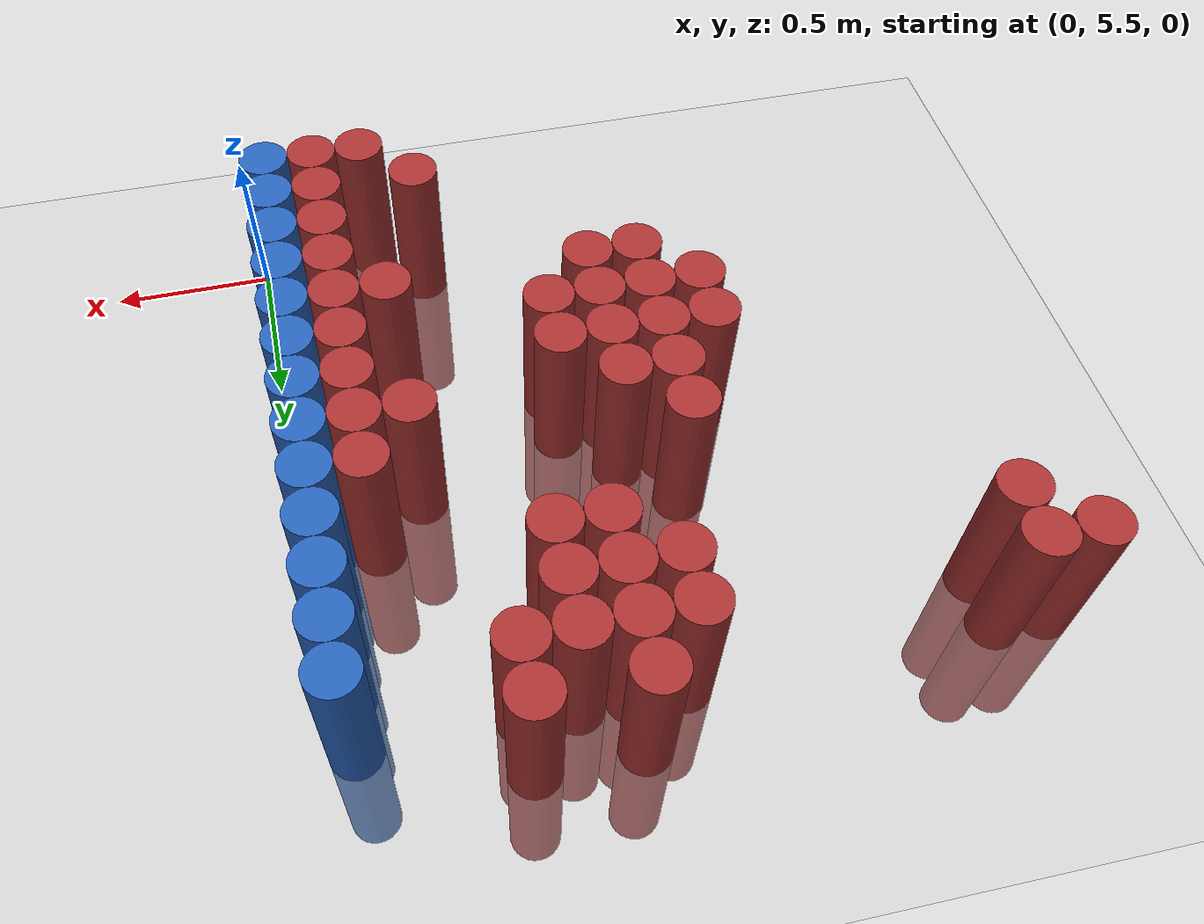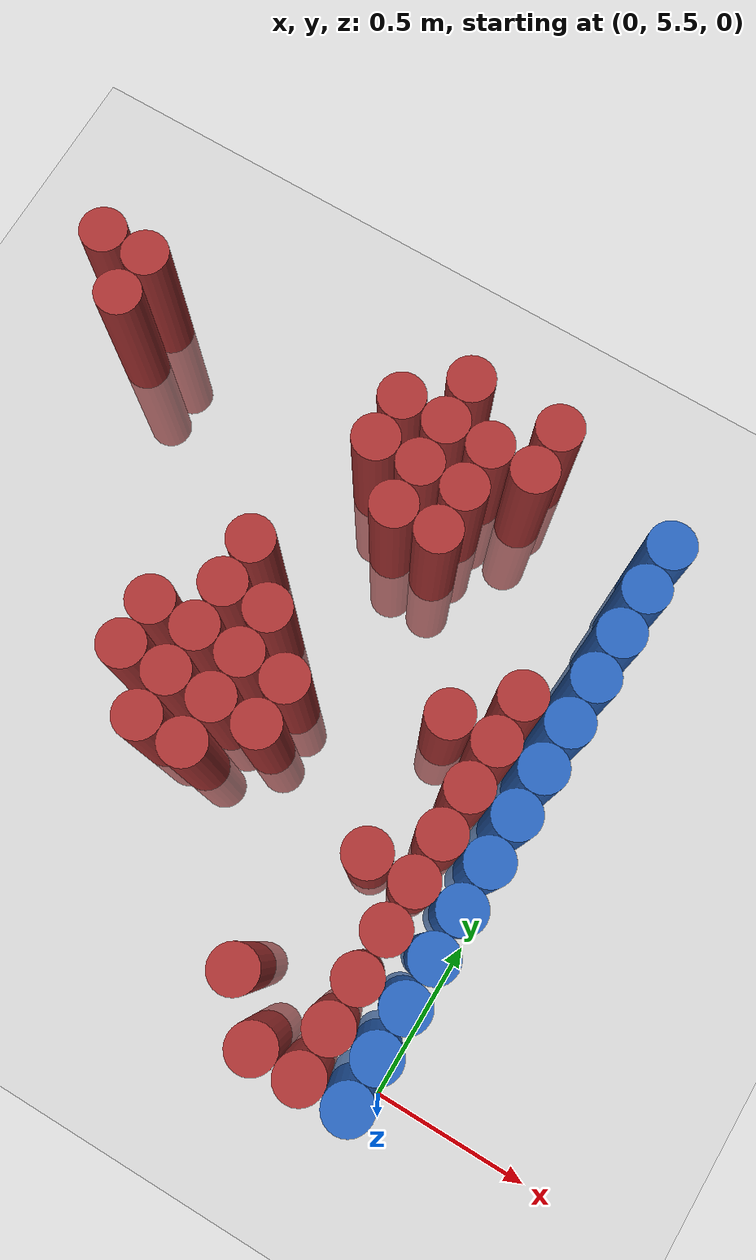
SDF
<sdf version="1.6">
 <world name="default">
  <model name="ground_plane">
   <static>1</static>
   <link name="link">
    <collision name="collision">
     <geometry><plane><normal>0 0 1</normal><size>100 100</size></plane></geometry>
     <surface><friction><ode><mu>100</mu><mu2>50</mu2></ode></friction></surface>
    </collision>
    <visual name="visual">
     <cast_shadows>0</cast_shadows>
     <geometry><plane><normal>0 0 1</normal><size>100 100</size></plane></geometry>
     <material>
      <script><uri>file://media/materials/scripts/gazebo.material</uri><name>Gazebo/Grey</name></script>
     </material>
    </visual>
   </link>
  </model>
  <model name="unit_cylinder_154">
   <static>1</static>
   <pose>-2.025000 7.275000 0.000000 0.000000 0.000000 0.000000</pose>
   <link name="link">
    <inertial>
     <mass>1</mass>
     <inertia><ixx>0.145833</ixx><ixy>0</ixy><ixz>0</ixz><iyy>0.145833</iyy><iyz>0</iyz><izz>0.125</izz></inertia>
    </inertial>
    <collision name="collision">
     <geometry><cylinder><radius>0.075000</radius><length>1</length></cylinder></geometry>
    </collision>
    <visual name="visual">
     <geometry><cylinder><radius>0.075000</radius><length>1</length></cylinder></geometry>
     <material>
      <ambient>0.648000 0.192000 0.192000 1</ambient>
      <diffuse>0.648000 0.192000 0.192000 1</diffuse>
     </material>
     <material>
      <script><name>Gazebo/Grey</name><uri>file://media/materials/scripts/gazebo.material</uri></script>
     </material>
    </visual>
   </link>
  </model>
  <model name="unit_cylinder_157">
   <static>1</static>
   <pose>-1.875000 7.125000 0.000000 0.000000 0.000000 0.000000</pose>
   <link name="link">
    <inertial>
     <mass>1</mass>
     <inertia><ixx>0.145833</ixx><ixy>0</ixy><ixz>0</ixz><iyy>0.145833</iyy><iyz>0</iyz><izz>0.125</izz></inertia>
    </inertial>
    <collision name="collision">
     <geometry><cylinder><radius>0.075000</radius><length>1</length></cylinder></geometry>
    </collision>
    <visual name="visual">
     <geometry><cylinder><radius>0.075000</radius><length>1</length></cylinder></geometry>
     <material>
      <ambient>0.648000 0.192000 0.192000 1</ambient>
      <diffuse>0.648000 0.192000 0.192000 1</diffuse>
     </material>
     <material>
      <script><name>Gazebo/Grey</name><uri>file://media/materials/scripts/gazebo.material</uri></script>
     </material>
    </visual>
   </link>
  </model>
  <model name="unit_cylinder_158">
   <static>1</static>
   <pose>-1.875000 7.275000 0.000000 0.000000 0.000000 0.000000</pose>
   <link name="link">
    <inertial>
     <mass>1</mass>
     <inertia><ixx>0.145833</ixx><ixy>0</ixy><ixz>0</ixz><iyy>0.145833</iyy><iyz>0</iyz><izz>0.125</izz></inertia>
    </inertial>
    <collision name="collision">
     <geometry><cylinder><radius>0.075000</radius><length>1</length></cylinder></geometry>
    </collision>
    <visual name="visual">
     <geometry><cylinder><radius>0.075000</radius><length>1</length></cylinder></geometry>
     <material>
      <ambient>0.648000 0.192000 0.192000 1</ambient>
      <diffuse>0.648000 0.192000 0.192000 1</diffuse>
     </material>
     <material>
      <script><name>Gazebo/Grey</name><uri>file://media/materials/scripts/gazebo.material</uri></script>
     </material>
    </visual>
   </link>
  </model>
  <model name="unit_cylinder_173">
   <static>1</static>
   <pose>-1.275000 6.225000 0.000000 0.000000 0.000000 0.000000</pose>
   <link name="link">
    <inertial>
     <mass>1</mass>
     <inertia><ixx>0.145833</ixx><ixy>0</ixy><ixz>0</ixz><iyy>0.145833</iyy><iyz>0</iyz><izz>0.125</izz></inertia>
    </inertial>
    <collision name="collision">
     <geometry><cylinder><radius>0.075000</radius><length>1</length></cylinder></geometry>
    </collision>
    <visual name="visual">
     <geometry><cylinder><radius>0.075000</radius><length>1</length></cylinder></geometry>
     <material>
      <ambient>0.648000 0.192000 0.192000 1</ambient>
      <diffuse>0.648000 0.192000 0.192000 1</diffuse>
     </material>
     <material>
      <script><name>Gazebo/Grey</name><uri>file://media/materials/scripts/gazebo.material</uri></script>
     </material>
    </visual>
   </link>
  </model>
  <model name="unit_cylinder_174">
   <static>1</static>
   <pose>-1.275000 6.375000 0.000000 0.000000 0.000000 0.000000</pose>
   <link name="link">
    <inertial>
     <mass>1</mass>
     <inertia><ixx>0.145833</ixx><ixy>0</ixy><ixz>0</ixz><iyy>0.145833</iyy><iyz>0</iyz><izz>0.125</izz></inertia>
    </inertial>
    <collision name="collision">
     <geometry><cylinder><radius>0.075000</radius><length>1</length></cylinder></geometry>
    </collision>
    <visual name="visual">
     <geometry><cylinder><radius>0.075000</radius><length>1</length></cylinder></geometry>
     <material>
      <ambient>0.648000 0.192000 0.192000 1</ambient>
      <diffuse>0.648000 0.192000 0.192000 1</diffuse>
     </material>
     <material>
      <script><name>Gazebo/Grey</name><uri>file://media/materials/scripts/gazebo.material</uri></script>
     </material>
    </visual>
   </link>
  </model>
  <model name="unit_cylinder_175">
   <static>1</static>
   <pose>-1.125000 6.075000 0.000000 0.000000 0.000000 0.000000</pose>
   <link name="link">
    <inertial>
     <mass>1</mass>
     <inertia><ixx>0.145833</ixx><ixy>0</ixy><ixz>0</ixz><iyy>0.145833</iyy><iyz>0</iyz><izz>0.125</izz></inertia>
    </inertial>
    <collision name="collision">
     <geometry><cylinder><radius>0.075000</radius><length>1</length></cylinder></geometry>
    </collision>
    <visual name="visual">
     <geometry><cylinder><radius>0.075000</radius><length>1</length></cylinder></geometry>
     <material>
      <ambient>0.648000 0.192000 0.192000 1</ambient>
      <diffuse>0.648000 0.192000 0.192000 1</diffuse>
     </material>
     <material>
      <script><name>Gazebo/Grey</name><uri>file://media/materials/scripts/gazebo.material</uri></script>
     </material>
    </visual>
   </link>
  </model>
  <model name="unit_cylinder_176">
   <static>1</static>
   <pose>-1.125000 6.225000 0.000000 0.000000 0.000000 0.000000</pose>
   <link name="link">
    <inertial>
     <mass>1</mass>
     <inertia><ixx>0.145833</ixx><ixy>0</ixy><ixz>0</ixz><iyy>0.145833</iyy><iyz>0</iyz><izz>0.125</izz></inertia>
    </inertial>
    <collision name="collision">
     <geometry><cylinder><radius>0.075000</radius><length>1</length></cylinder></geometry>
    </collision>
    <visual name="visual">
     <geometry><cylinder><radius>0.075000</radius><length>1</length></cylinder></geometry>
     <material>
      <ambient>0.648000 0.192000 0.192000 1</ambient>
      <diffuse>0.648000 0.192000 0.192000 1</diffuse>
     </material>
     <material>
      <script><name>Gazebo/Grey</name><uri>file://media/materials/scripts/gazebo.material</uri></script>
     </material>
    </visual>
   </link>
  </model>
  <model name="unit_cylinder_177">
   <static>1</static>
   <pose>-1.125000 6.375000 0.000000 0.000000 0.000000 0.000000</pose>
   <link name="link">
    <inertial>
     <mass>1</mass>
     <inertia><ixx>0.145833</ixx><ixy>0</ixy><ixz>0</ixz><iyy>0.145833</iyy><iyz>0</iyz><izz>0.125</izz></inertia>
    </inertial>
    <collision name="collision">
     <geometry><cylinder><radius>0.075000</radius><length>1</length></cylinder></geometry>
    </collision>
    <visual name="visual">
     <geometry><cylinder><radius>0.075000</radius><length>1</length></cylinder></geometry>
     <material>
      <ambient>0.648000 0.192000 0.192000 1</ambient>
      <diffuse>0.648000 0.192000 0.192000 1</diffuse>
     </material>
     <material>
      <script><name>Gazebo/Grey</name><uri>file://media/materials/scripts/gazebo.material</uri></script>
     </material>
    </visual>
   </link>
  </model>
  <model name="unit_cylinder_178">
   <static>1</static>
   <pose>-1.125000 6.525000 0.000000 0.000000 0.000000 0.000000</pose>
   <link name="link">
    <inertial>
     <mass>1</mass>
     <inertia><ixx>0.145833</ixx><ixy>0</ixy><ixz>0</ixz><iyy>0.145833</iyy><iyz>0</iyz><izz>0.125</izz></inertia>
    </inertial>
    <collision name="collision">
     <geometry><cylinder><radius>0.075000</radius><length>1</length></cylinder></geometry>
    </collision>
    <visual name="visual">
     <geometry><cylinder><radius>0.075000</radius><length>1</length></cylinder></geometry>
     <material>
      <ambient>0.648000 0.192000 0.192000 1</ambient>
      <diffuse>0.648000 0.192000 0.192000 1</diffuse>
     </material>
     <material>
      <script><name>Gazebo/Grey</name><uri>file://media/materials/scripts/gazebo.material</uri></script>
     </material>
    </visual>
   </link>
  </model>
  <model name="unit_cylinder_179">
   <static>1</static>
   <pose>-1.125000 6.675000 0.000000 0.000000 0.000000 0.000000</pose>
   <link name="link">
    <inertial>
     <mass>1</mass>
     <inertia><ixx>0.145833</ixx><ixy>0</ixy><ixz>0</ixz><iyy>0.145833</iyy><iyz>0</iyz><izz>0.125</izz></inertia>
    </inertial>
    <collision name="collision">
     <geometry><cylinder><radius>0.075000</radius><length>1</length></cylinder></geometry>
    </collision>
    <visual name="visual">
     <geometry><cylinder><radius>0.075000</radius><length>1</length></cylinder></geometry>
     <material>
      <ambient>0.648000 0.192000 0.192000 1</ambient>
      <diffuse>0.648000 0.192000 0.192000 1</diffuse>
     </material>
     <material>
      <script><name>Gazebo/Grey</name><uri>file://media/materials/scripts/gazebo.material</uri></script>
     </material>
    </visual>
   </link>
  </model>
  <model name="unit_cylinder_180">
   <static>1</static>
   <pose>-0.975000 6.075000 0.000000 0.000000 0.000000 0.000000</pose>
   <link name="link">
    <inertial>
     <mass>1</mass>
     <inertia><ixx>0.145833</ixx><ixy>0</ixy><ixz>0</ixz><iyy>0.145833</iyy><iyz>0</iyz><izz>0.125</izz></inertia>
    </inertial>
    <collision name="collision">
     <geometry><cylinder><radius>0.075000</radius><length>1</length></cylinder></geometry>
    </collision>
    <visual name="visual">
     <geometry><cylinder><radius>0.075000</radius><length>1</length></cylinder></geometry>
     <material>
      <ambient>0.648000 0.192000 0.192000 1</ambient>
      <diffuse>0.648000 0.192000 0.192000 1</diffuse>
     </material>
     <material>
      <script><name>Gazebo/Grey</name><uri>file://media/materials/scripts/gazebo.material</uri></script>
     </material>
    </visual>
   </link>
  </model>
  <model name="unit_cylinder_181">
   <static>1</static>
   <pose>-0.975000 6.225000 0.000000 0.000000 0.000000 0.000000</pose>
   <link name="link">
    <inertial>
     <mass>1</mass>
     <inertia><ixx>0.145833</ixx><ixy>0</ixy><ixz>0</ixz><iyy>0.145833</iyy><iyz>0</iyz><izz>0.125</izz></inertia>
    </inertial>
    <collision name="collision">
     <geometry><cylinder><radius>0.075000</radius><length>1</length></cylinder></geometry>
    </collision>
    <visual name="visual">
     <geometry><cylinder><radius>0.075000</radius><length>1</length></cylinder></geometry>
     <material>
      <ambient>0.648000 0.192000 0.192000 1</ambient>
      <diffuse>0.648000 0.192000 0.192000 1</diffuse>
     </material>
     <material>
      <script><name>Gazebo/Grey</name><uri>file://media/materials/scripts/gazebo.material</uri></script>
     </material>
    </visual>
   </link>
  </model>
  <model name="unit_cylinder_182">
   <static>1</static>
   <pose>-0.975000 6.375000 0.000000 0.000000 0.000000 0.000000</pose>
   <link name="link">
    <inertial>
     <mass>1</mass>
     <inertia><ixx>0.145833</ixx><ixy>0</ixy><ixz>0</ixz><iyy>0.145833</iyy><iyz>0</iyz><izz>0.125</izz></inertia>
    </inertial>
    <collision name="collision">
     <geometry><cylinder><radius>0.075000</radius><length>1</length></cylinder></geometry>
    </collision>
    <visual name="visual">
     <geometry><cylinder><radius>0.075000</radius><length>1</length></cylinder></geometry>
     <material>
      <ambient>0.648000 0.192000 0.192000 1</ambient>
      <diffuse>0.648000 0.192000 0.192000 1</diffuse>
     </material>
     <material>
      <script><name>Gazebo/Grey</name><uri>file://media/materials/scripts/gazebo.material</uri></script>
     </material>
    </visual>
   </link>
  </model>
  <model name="unit_cylinder_183">
   <static>1</static>
   <pose>-0.975000 6.525000 0.000000 0.000000 0.000000 0.000000</pose>
   <link name="link">
    <inertial>
     <mass>1</mass>
     <inertia><ixx>0.145833</ixx><ixy>0</ixy><ixz>0</ixz><iyy>0.145833</iyy><iyz>0</iyz><izz>0.125</izz></inertia>
    </inertial>
    <collision name="collision">
     <geometry><cylinder><radius>0.075000</radius><length>1</length></cylinder></geometry>
    </collision>
    <visual name="visual">
     <geometry><cylinder><radius>0.075000</radius><length>1</length></cylinder></geometry>
     <material>
      <ambient>0.648000 0.192000 0.192000 1</ambient>
      <diffuse>0.648000 0.192000 0.192000 1</diffuse>
     </material>
     <material>
      <script><name>Gazebo/Grey</name><uri>file://media/materials/scripts/gazebo.material</uri></script>
     </material>
    </visual>
   </link>
  </model>
  <model name="unit_cylinder_184">
   <static>1</static>
   <pose>-0.975000 7.125000 0.000000 0.000000 0.000000 0.000000</pose>
   <link name="link">
    <inertial>
     <mass>1</mass>
     <inertia><ixx>0.145833</ixx><ixy>0</ixy><ixz>0</ixz><iyy>0.145833</iyy><iyz>0</iyz><izz>0.125</izz></inertia>
    </inertial>
    <collision name="collision">
     <geometry><cylinder><radius>0.075000</radius><length>1</length></cylinder></geometry>
    </collision>
    <visual name="visual">
     <geometry><cylinder><radius>0.075000</radius><length>1</length></cylinder></geometry>
     <material>
      <ambient>0.648000 0.192000 0.192000 1</ambient>
      <diffuse>0.648000 0.192000 0.192000 1</diffuse>
     </material>
     <material>
      <script><name>Gazebo/Grey</name><uri>file://media/materials/scripts/gazebo.material</uri></script>
     </material>
    </visual>
   </link>
  </model>
  <model name="unit_cylinder_185">
   <static>1</static>
   <pose>-0.975000 7.275000 0.000000 0.000000 0.000000 0.000000</pose>
   <link name="link">
    <inertial>
     <mass>1</mass>
     <inertia><ixx>0.145833</ixx><ixy>0</ixy><ixz>0</ixz><iyy>0.145833</iyy><iyz>0</iyz><izz>0.125</izz></inertia>
    </inertial>
    <collision name="collision">
     <geometry><cylinder><radius>0.075000</radius><length>1</length></cylinder></geometry>
    </collision>
    <visual name="visual">
     <geometry><cylinder><radius>0.075000</radius><length>1</length></cylinder></geometry>
     <material>
      <ambient>0.648000 0.192000 0.192000 1</ambient>
      <diffuse>0.648000 0.192000 0.192000 1</diffuse>
     </material>
     <material>
      <script><name>Gazebo/Grey</name><uri>file://media/materials/scripts/gazebo.material</uri></script>
     </material>
    </visual>
   </link>
  </model>
  <model name="unit_cylinder_187">
   <static>1</static>
   <pose>-0.825000 6.225000 0.000000 0.000000 0.000000 0.000000</pose>
   <link name="link">
    <inertial>
     <mass>1</mass>
     <inertia><ixx>0.145833</ixx><ixy>0</ixy><ixz>0</ixz><iyy>0.145833</iyy><iyz>0</iyz><izz>0.125</izz></inertia>
    </inertial>
    <collision name="collision">
     <geometry><cylinder><radius>0.075000</radius><length>1</length></cylinder></geometry>
    </collision>
    <visual name="visual">
     <geometry><cylinder><radius>0.075000</radius><length>1</length></cylinder></geometry>
     <material>
      <ambient>0.648000 0.192000 0.192000 1</ambient>
      <diffuse>0.648000 0.192000 0.192000 1</diffuse>
     </material>
     <material>
      <script><name>Gazebo/Grey</name><uri>file://media/materials/scripts/gazebo.material</uri></script>
     </material>
    </visual>
   </link>
  </model>
  <model name="unit_cylinder_188">
   <static>1</static>
   <pose>-0.825000 6.375000 0.000000 0.000000 0.000000 0.000000</pose>
   <link name="link">
    <inertial>
     <mass>1</mass>
     <inertia><ixx>0.145833</ixx><ixy>0</ixy><ixz>0</ixz><iyy>0.145833</iyy><iyz>0</iyz><izz>0.125</izz></inertia>
    </inertial>
    <collision name="collision">
     <geometry><cylinder><radius>0.075000</radius><length>1</length></cylinder></geometry>
    </collision>
    <visual name="visual">
     <geometry><cylinder><radius>0.075000</radius><length>1</length></cylinder></geometry>
     <material>
      <ambient>0.648000 0.192000 0.192000 1</ambient>
      <diffuse>0.648000 0.192000 0.192000 1</diffuse>
     </material>
     <material>
      <script><name>Gazebo/Grey</name><uri>file://media/materials/scripts/gazebo.material</uri></script>
     </material>
    </visual>
   </link>
  </model>
  <model name="unit_cylinder_189">
   <static>1</static>
   <pose>-0.825000 6.975000 0.000000 0.000000 0.000000 0.000000</pose>
   <link name="link">
    <inertial>
     <mass>1</mass>
     <inertia><ixx>0.145833</ixx><ixy>0</ixy><ixz>0</ixz><iyy>0.145833</iyy><iyz>0</iyz><izz>0.125</izz></inertia>
    </inertial>
    <collision name="collision">
     <geometry><cylinder><radius>0.075000</radius><length>1</length></cylinder></geometry>
    </collision>
    <visual name="visual">
     <geometry><cylinder><radius>0.075000</radius><length>1</length></cylinder></geometry>
     <material>
      <ambient>0.648000 0.192000 0.192000 1</ambient>
      <diffuse>0.648000 0.192000 0.192000 1</diffuse>
     </material>
     <material>
      <script><name>Gazebo/Grey</name><uri>file://media/materials/scripts/gazebo.material</uri></script>
     </material>
    </visual>
   </link>
  </model>
  <model name="unit_cylinder_190">
   <static>1</static>
   <pose>-0.825000 7.125000 0.000000 0.000000 0.000000 0.000000</pose>
   <link name="link">
    <inertial>
     <mass>1</mass>
     <inertia><ixx>0.145833</ixx><ixy>0</ixy><ixz>0</ixz><iyy>0.145833</iyy><iyz>0</iyz><izz>0.125</izz></inertia>
    </inertial>
    <collision name="collision">
     <geometry><cylinder><radius>0.075000</radius><length>1</length></cylinder></geometry>
    </collision>
    <visual name="visual">
     <geometry><cylinder><radius>0.075000</radius><length>1</length></cylinder></geometry>
     <material>
      <ambient>0.648000 0.192000 0.192000 1</ambient>
      <diffuse>0.648000 0.192000 0.192000 1</diffuse>
     </material>
     <material>
      <script><name>Gazebo/Grey</name><uri>file://media/materials/scripts/gazebo.material</uri></script>
     </material>
    </visual>
   </link>
  </model>
  <model name="unit_cylinder_191">
   <static>1</static>
   <pose>-0.825000 7.275000 0.000000 0.000000 0.000000 0.000000</pose>
   <link name="link">
    <inertial>
     <mass>1</mass>
     <inertia><ixx>0.145833</ixx><ixy>0</ixy><ixz>0</ixz><iyy>0.145833</iyy><iyz>0</iyz><izz>0.125</izz></inertia>
    </inertial>
    <collision name="collision">
     <geometry><cylinder><radius>0.075000</radius><length>1</length></cylinder></geometry>
    </collision>
    <visual name="visual">
     <geometry><cylinder><radius>0.075000</radius><length>1</length></cylinder></geometry>
     <material>
      <ambient>0.648000 0.192000 0.192000 1</ambient>
      <diffuse>0.648000 0.192000 0.192000 1</diffuse>
     </material>
     <material>
      <script><name>Gazebo/Grey</name><uri>file://media/materials/scripts/gazebo.material</uri></script>
     </material>
    </visual>
   </link>
  </model>
  <model name="unit_cylinder_192">
   <static>1</static>
   <pose>-0.825000 7.425000 0.000000 0.000000 0.000000 0.000000</pose>
   <link name="link">
    <inertial>
     <mass>1</mass>
     <inertia><ixx>0.145833</ixx><ixy>0</ixy><ixz>0</ixz><iyy>0.145833</iyy><iyz>0</iyz><izz>0.125</izz></inertia>
    </inertial>
    <collision name="collision">
     <geometry><cylinder><radius>0.075000</radius><length>1</length></cylinder></geometry>
    </collision>
    <visual name="visual">
     <geometry><cylinder><radius>0.075000</radius><length>1</length></cylinder></geometry>
     <material>
      <ambient>0.648000 0.192000 0.192000 1</ambient>
      <diffuse>0.648000 0.192000 0.192000 1</diffuse>
     </material>
     <material>
      <script><name>Gazebo/Grey</name><uri>file://media/materials/scripts/gazebo.material</uri></script>
     </material>
    </visual>
   </link>
  </model>
  <model name="unit_cylinder_199">
   <static>1</static>
   <pose>-0.675000 6.975000 0.000000 0.000000 0.000000 0.000000</pose>
   <link name="link">
    <inertial>
     <mass>1</mass>
     <inertia><ixx>0.145833</ixx><ixy>0</ixy><ixz>0</ixz><iyy>0.145833</iyy><iyz>0</iyz><izz>0.125</izz></inertia>
    </inertial>
    <collision name="collision">
     <geometry><cylinder><radius>0.075000</radius><length>1</length></cylinder></geometry>
    </collision>
    <visual name="visual">
     <geometry><cylinder><radius>0.075000</radius><length>1</length></cylinder></geometry>
     <material>
      <ambient>0.648000 0.192000 0.192000 1</ambient>
      <diffuse>0.648000 0.192000 0.192000 1</diffuse>
     </material>
     <material>
      <script><name>Gazebo/Grey</name><uri>file://media/materials/scripts/gazebo.material</uri></script>
     </material>
    </visual>
   </link>
  </model>
  <model name="unit_cylinder_200">
   <static>1</static>
   <pose>-0.675000 7.125000 0.000000 0.000000 0.000000 0.000000</pose>
   <link name="link">
    <inertial>
     <mass>1</mass>
     <inertia><ixx>0.145833</ixx><ixy>0</ixy><ixz>0</ixz><iyy>0.145833</iyy><iyz>0</iyz><izz>0.125</izz></inertia>
    </inertial>
    <collision name="collision">
     <geometry><cylinder><radius>0.075000</radius><length>1</length></cylinder></geometry>
    </collision>
    <visual name="visual">
     <geometry><cylinder><radius>0.075000</radius><length>1</length></cylinder></geometry>
     <material>
      <ambient>0.648000 0.192000 0.192000 1</ambient>
      <diffuse>0.648000 0.192000 0.192000 1</diffuse>
     </material>
     <material>
      <script><name>Gazebo/Grey</name><uri>file://media/materials/scripts/gazebo.material</uri></script>
     </material>
    </visual>
   </link>
  </model>
  <model name="unit_cylinder_201">
   <static>1</static>
   <pose>-0.675000 7.275000 0.000000 0.000000 0.000000 0.000000</pose>
   <link name="link">
    <inertial>
     <mass>1</mass>
     <inertia><ixx>0.145833</ixx><ixy>0</ixy><ixz>0</ixz><iyy>0.145833</iyy><iyz>0</iyz><izz>0.125</izz></inertia>
    </inertial>
    <collision name="collision">
     <geometry><cylinder><radius>0.075000</radius><length>1</length></cylinder></geometry>
    </collision>
    <visual name="visual">
     <geometry><cylinder><radius>0.075000</radius><length>1</length></cylinder></geometry>
     <material>
      <ambient>0.648000 0.192000 0.192000 1</ambient>
      <diffuse>0.648000 0.192000 0.192000 1</diffuse>
     </material>
     <material>
      <script><name>Gazebo/Grey</name><uri>file://media/materials/scripts/gazebo.material</uri></script>
     </material>
    </visual>
   </link>
  </model>
  <model name="unit_cylinder_208">
   <static>1</static>
   <pose>-0.525000 5.625000 0.000000 0.000000 0.000000 0.000000</pose>
   <link name="link">
    <inertial>
     <mass>1</mass>
     <inertia><ixx>0.145833</ixx><ixy>0</ixy><ixz>0</ixz><iyy>0.145833</iyy><iyz>0</iyz><izz>0.125</izz></inertia>
    </inertial>
    <collision name="collision">
     <geometry><cylinder><radius>0.075000</radius><length>1</length></cylinder></geometry>
    </collision>
    <visual name="visual">
     <geometry><cylinder><radius>0.075000</radius><length>1</length></cylinder></geometry>
     <material>
      <ambient>0.648000 0.192000 0.192000 1</ambient>
      <diffuse>0.648000 0.192000 0.192000 1</diffuse>
     </material>
     <material>
      <script><name>Gazebo/Grey</name><uri>file://media/materials/scripts/gazebo.material</uri></script>
     </material>
    </visual>
   </link>
  </model>
  <model name="unit_cylinder_209">
   <static>1</static>
   <pose>-0.525000 7.275000 0.000000 0.000000 0.000000 0.000000</pose>
   <link name="link">
    <inertial>
     <mass>1</mass>
     <inertia><ixx>0.145833</ixx><ixy>0</ixy><ixz>0</ixz><iyy>0.145833</iyy><iyz>0</iyz><izz>0.125</izz></inertia>
    </inertial>
    <collision name="collision">
     <geometry><cylinder><radius>0.075000</radius><length>1</length></cylinder></geometry>
    </collision>
    <visual name="visual">
     <geometry><cylinder><radius>0.075000</radius><length>1</length></cylinder></geometry>
     <material>
      <ambient>0.648000 0.192000 0.192000 1</ambient>
      <diffuse>0.648000 0.192000 0.192000 1</diffuse>
     </material>
     <material>
      <script><name>Gazebo/Grey</name><uri>file://media/materials/scripts/gazebo.material</uri></script>
     </material>
    </visual>
   </link>
  </model>
  <model name="unit_cylinder_210">
   <static>1</static>
   <pose>-0.525000 7.425000 0.000000 0.000000 0.000000 0.000000</pose>
   <link name="link">
    <inertial>
     <mass>1</mass>
     <inertia><ixx>0.145833</ixx><ixy>0</ixy><ixz>0</ixz><iyy>0.145833</iyy><iyz>0</iyz><izz>0.125</izz></inertia>
    </inertial>
    <collision name="collision">
     <geometry><cylinder><radius>0.075000</radius><length>1</length></cylinder></geometry>
    </collision>
    <visual name="visual">
     <geometry><cylinder><radius>0.075000</radius><length>1</length></cylinder></geometry>
     <material>
      <ambient>0.648000 0.192000 0.192000 1</ambient>
      <diffuse>0.648000 0.192000 0.192000 1</diffuse>
     </material>
     <material>
      <script><name>Gazebo/Grey</name><uri>file://media/materials/scripts/gazebo.material</uri></script>
     </material>
    </visual>
   </link>
  </model>
  <model name="unit_cylinder_214">
   <static>1</static>
   <pose>-0.375000 5.475000 0.000000 0.000000 0.000000 0.000000</pose>
   <link name="link">
    <inertial>
     <mass>1</mass>
     <inertia><ixx>0.145833</ixx><ixy>0</ixy><ixz>0</ixz><iyy>0.145833</iyy><iyz>0</iyz><izz>0.125</izz></inertia>
    </inertial>
    <collision name="collision">
     <geometry><cylinder><radius>0.075000</radius><length>1</length></cylinder></geometry>
    </collision>
    <visual name="visual">
     <geometry><cylinder><radius>0.075000</radius><length>1</length></cylinder></geometry>
     <material>
      <ambient>0.648000 0.192000 0.192000 1</ambient>
      <diffuse>0.648000 0.192000 0.192000 1</diffuse>
     </material>
     <material>
      <script><name>Gazebo/Grey</name><uri>file://media/materials/scripts/gazebo.material</uri></script>
     </material>
    </visual>
   </link>
  </model>
  <model name="unit_cylinder_215">
   <static>1</static>
   <pose>-0.375000 6.075000 0.000000 0.000000 0.000000 0.000000</pose>
   <link name="link">
    <inertial>
     <mass>1</mass>
     <inertia><ixx>0.145833</ixx><ixy>0</ixy><ixz>0</ixz><iyy>0.145833</iyy><iyz>0</iyz><izz>0.125</izz></inertia>
    </inertial>
    <collision name="collision">
     <geometry><cylinder><radius>0.075000</radius><length>1</length></cylinder></geometry>
    </collision>
    <visual name="visual">
     <geometry><cylinder><radius>0.075000</radius><length>1</length></cylinder></geometry>
     <material>
      <ambient>0.648000 0.192000 0.192000 1</ambient>
      <diffuse>0.648000 0.192000 0.192000 1</diffuse>
     </material>
     <material>
      <script><name>Gazebo/Grey</name><uri>file://media/materials/scripts/gazebo.material</uri></script>
     </material>
    </visual>
   </link>
  </model>
  <model name="unit_cylinder_216">
   <static>1</static>
   <pose>-0.375000 6.525000 0.000000 0.000000 0.000000 0.000000</pose>
   <link name="link">
    <inertial>
     <mass>1</mass>
     <inertia><ixx>0.145833</ixx><ixy>0</ixy><ixz>0</ixz><iyy>0.145833</iyy><iyz>0</iyz><izz>0.125</izz></inertia>
    </inertial>
    <collision name="collision">
     <geometry><cylinder><radius>0.075000</radius><length>1</length></cylinder></geometry>
    </collision>
    <visual name="visual">
     <geometry><cylinder><radius>0.075000</radius><length>1</length></cylinder></geometry>
     <material>
      <ambient>0.648000 0.192000 0.192000 1</ambient>
      <diffuse>0.648000 0.192000 0.192000 1</diffuse>
     </material>
     <material>
      <script><name>Gazebo/Grey</name><uri>file://media/materials/scripts/gazebo.material</uri></script>
     </material>
    </visual>
   </link>
  </model>
  <model name="unit_cylinder_223">
   <static>1</static>
   <pose>-0.225000 5.475000 0.000000 0.000000 0.000000 0.000000</pose>
   <link name="link">
    <inertial>
     <mass>1</mass>
     <inertia><ixx>0.145833</ixx><ixy>0</ixy><ixz>0</ixz><iyy>0.145833</iyy><iyz>0</iyz><izz>0.125</izz></inertia>
    </inertial>
    <collision name="collision">
     <geometry><cylinder><radius>0.075000</radius><length>1</length></cylinder></geometry>
    </collision>
    <visual name="visual">
     <geometry><cylinder><radius>0.075000</radius><length>1</length></cylinder></geometry>
     <material>
      <ambient>0.648000 0.192000 0.192000 1</ambient>
      <diffuse>0.648000 0.192000 0.192000 1</diffuse>
     </material>
     <material>
      <script><name>Gazebo/Grey</name><uri>file://media/materials/scripts/gazebo.material</uri></script>
     </material>
    </visual>
   </link>
  </model>
  <model name="unit_cylinder_224">
   <static>1</static>
   <pose>-0.225000 5.625000 0.000000 0.000000 0.000000 0.000000</pose>
   <link name="link">
    <inertial>
     <mass>1</mass>
     <inertia><ixx>0.145833</ixx><ixy>0</ixy><ixz>0</ixz><iyy>0.145833</iyy><iyz>0</iyz><izz>0.125</izz></inertia>
    </inertial>
    <collision name="collision">
     <geometry><cylinder><radius>0.075000</radius><length>1</length></cylinder></geometry>
    </collision>
    <visual name="visual">
     <geometry><cylinder><radius>0.075000</radius><length>1</length></cylinder></geometry>
     <material>
      <ambient>0.648000 0.192000 0.192000 1</ambient>
      <diffuse>0.648000 0.192000 0.192000 1</diffuse>
     </material>
     <material>
      <script><name>Gazebo/Grey</name><uri>file://media/materials/scripts/gazebo.material</uri></script>
     </material>
    </visual>
   </link>
  </model>
  <model name="unit_cylinder_225">
   <static>1</static>
   <pose>-0.225000 5.775000 0.000000 0.000000 0.000000 0.000000</pose>
   <link name="link">
    <inertial>
     <mass>1</mass>
     <inertia><ixx>0.145833</ixx><ixy>0</ixy><ixz>0</ixz><iyy>0.145833</iyy><iyz>0</iyz><izz>0.125</izz></inertia>
    </inertial>
    <collision name="collision">
     <geometry><cylinder><radius>0.075000</radius><length>1</length></cylinder></geometry>
    </collision>
    <visual name="visual">
     <geometry><cylinder><radius>0.075000</radius><length>1</length></cylinder></geometry>
     <material>
      <ambient>0.648000 0.192000 0.192000 1</ambient>
      <diffuse>0.648000 0.192000 0.192000 1</diffuse>
     </material>
     <material>
      <script><name>Gazebo/Grey</name><uri>file://media/materials/scripts/gazebo.material</uri></script>
     </material>
    </visual>
   </link>
  </model>
  <model name="unit_cylinder_226">
   <static>1</static>
   <pose>-0.225000 5.925000 0.000000 0.000000 0.000000 0.000000</pose>
   <link name="link">
    <inertial>
     <mass>1</mass>
     <inertia><ixx>0.145833</ixx><ixy>0</ixy><ixz>0</ixz><iyy>0.145833</iyy><iyz>0</iyz><izz>0.125</izz></inertia>
    </inertial>
    <collision name="collision">
     <geometry><cylinder><radius>0.075000</radius><length>1</length></cylinder></geometry>
    </collision>
    <visual name="visual">
     <geometry><cylinder><radius>0.075000</radius><length>1</length></cylinder></geometry>
     <material>
      <ambient>0.648000 0.192000 0.192000 1</ambient>
      <diffuse>0.648000 0.192000 0.192000 1</diffuse>
     </material>
     <material>
      <script><name>Gazebo/Grey</name><uri>file://media/materials/scripts/gazebo.material</uri></script>
     </material>
    </visual>
   </link>
  </model>
  <model name="unit_cylinder_227">
   <static>1</static>
   <pose>-0.225000 6.075000 0.000000 0.000000 0.000000 0.000000</pose>
   <link name="link">
    <inertial>
     <mass>1</mass>
     <inertia><ixx>0.145833</ixx><ixy>0</ixy><ixz>0</ixz><iyy>0.145833</iyy><iyz>0</iyz><izz>0.125</izz></inertia>
    </inertial>
    <collision name="collision">
     <geometry><cylinder><radius>0.075000</radius><length>1</length></cylinder></geometry>
    </collision>
    <visual name="visual">
     <geometry><cylinder><radius>0.075000</radius><length>1</length></cylinder></geometry>
     <material>
      <ambient>0.648000 0.192000 0.192000 1</ambient>
      <diffuse>0.648000 0.192000 0.192000 1</diffuse>
     </material>
     <material>
      <script><name>Gazebo/Grey</name><uri>file://media/materials/scripts/gazebo.material</uri></script>
     </material>
    </visual>
   </link>
  </model>
  <model name="unit_cylinder_228">
   <static>1</static>
   <pose>-0.225000 6.225000 0.000000 0.000000 0.000000 0.000000</pose>
   <link name="link">
    <inertial>
     <mass>1</mass>
     <inertia><ixx>0.145833</ixx><ixy>0</ixy><ixz>0</ixz><iyy>0.145833</iyy><iyz>0</iyz><izz>0.125</izz></inertia>
    </inertial>
    <collision name="collision">
     <geometry><cylinder><radius>0.075000</radius><length>1</length></cylinder></geometry>
    </collision>
    <visual name="visual">
     <geometry><cylinder><radius>0.075000</radius><length>1</length></cylinder></geometry>
     <material>
      <ambient>0.648000 0.192000 0.192000 1</ambient>
      <diffuse>0.648000 0.192000 0.192000 1</diffuse>
     </material>
     <material>
      <script><name>Gazebo/Grey</name><uri>file://media/materials/scripts/gazebo.material</uri></script>
     </material>
    </visual>
   </link>
  </model>
  <model name="unit_cylinder_229">
   <static>1</static>
   <pose>-0.225000 6.375000 0.000000 0.000000 0.000000 0.000000</pose>
   <link name="link">
    <inertial>
     <mass>1</mass>
     <inertia><ixx>0.145833</ixx><ixy>0</ixy><ixz>0</ixz><iyy>0.145833</iyy><iyz>0</iyz><izz>0.125</izz></inertia>
    </inertial>
    <collision name="collision">
     <geometry><cylinder><radius>0.075000</radius><length>1</length></cylinder></geometry>
    </collision>
    <visual name="visual">
     <geometry><cylinder><radius>0.075000</radius><length>1</length></cylinder></geometry>
     <material>
      <ambient>0.648000 0.192000 0.192000 1</ambient>
      <diffuse>0.648000 0.192000 0.192000 1</diffuse>
     </material>
     <material>
      <script><name>Gazebo/Grey</name><uri>file://media/materials/scripts/gazebo.material</uri></script>
     </material>
    </visual>
   </link>
  </model>
  <model name="unit_cylinder_230">
   <static>1</static>
   <pose>-0.225000 6.525000 0.000000 0.000000 0.000000 0.000000</pose>
   <link name="link">
    <inertial>
     <mass>1</mass>
     <inertia><ixx>0.145833</ixx><ixy>0</ixy><ixz>0</ixz><iyy>0.145833</iyy><iyz>0</iyz><izz>0.125</izz></inertia>
    </inertial>
    <collision name="collision">
     <geometry><cylinder><radius>0.075000</radius><length>1</length></cylinder></geometry>
    </collision>
    <visual name="visual">
     <geometry><cylinder><radius>0.075000</radius><length>1</length></cylinder></geometry>
     <material>
      <ambient>0.648000 0.192000 0.192000 1</ambient>
      <diffuse>0.648000 0.192000 0.192000 1</diffuse>
     </material>
     <material>
      <script><name>Gazebo/Grey</name><uri>file://media/materials/scripts/gazebo.material</uri></script>
     </material>
    </visual>
   </link>
  </model>
  <model name="unit_cylinder_231">
   <static>1</static>
   <pose>-0.225000 6.675000 0.000000 0.000000 0.000000 0.000000</pose>
   <link name="link">
    <inertial>
     <mass>1</mass>
     <inertia><ixx>0.145833</ixx><ixy>0</ixy><ixz>0</ixz><iyy>0.145833</iyy><iyz>0</iyz><izz>0.125</izz></inertia>
    </inertial>
    <collision name="collision">
     <geometry><cylinder><radius>0.075000</radius><length>1</length></cylinder></geometry>
    </collision>
    <visual name="visual">
     <geometry><cylinder><radius>0.075000</radius><length>1</length></cylinder></geometry>
     <material>
      <ambient>0.648000 0.192000 0.192000 1</ambient>
      <diffuse>0.648000 0.192000 0.192000 1</diffuse>
     </material>
     <material>
      <script><name>Gazebo/Grey</name><uri>file://media/materials/scripts/gazebo.material</uri></script>
     </material>
    </visual>
   </link>
  </model>
  <model name="unit_cylinder_240">
   <static>1</static>
   <pose>-0.075000 5.475000 0.000000 0.000000 0.000000 0.000000</pose>
   <link name="link">
    <inertial>
     <mass>1</mass>
     <inertia><ixx>0.145833</ixx><ixy>0</ixy><ixz>0</ixz><iyy>0.145833</iyy><iyz>0</iyz><izz>0.125</izz></inertia>
    </inertial>
    <collision name="collision">
     <geometry><cylinder><radius>0.075000</radius><length>1</length></cylinder></geometry>
    </collision>
    <visual name="visual">
     <geometry><cylinder><radius>0.075000</radius><length>1</length></cylinder></geometry>
     <material>
      <ambient>0.152000 0.379000 0.720000 1</ambient>
      <diffuse>0.152000 0.379000 0.720000 1</diffuse>
     </material>
     <material>
      <script><name>Gazebo/Grey</name><uri>file://media/materials/scripts/gazebo.material</uri></script>
     </material>
    </visual>
   </link>
  </model>
  <model name="unit_cylinder_241">
   <static>1</static>
   <pose>-0.075000 5.625000 0.000000 0.000000 0.000000 0.000000</pose>
   <link name="link">
    <inertial>
     <mass>1</mass>
     <inertia><ixx>0.145833</ixx><ixy>0</ixy><ixz>0</ixz><iyy>0.145833</iyy><iyz>0</iyz><izz>0.125</izz></inertia>
    </inertial>
    <collision name="collision">
     <geometry><cylinder><radius>0.075000</radius><length>1</length></cylinder></geometry>
    </collision>
    <visual name="visual">
     <geometry><cylinder><radius>0.075000</radius><length>1</length></cylinder></geometry>
     <material>
      <ambient>0.152000 0.379000 0.720000 1</ambient>
      <diffuse>0.152000 0.379000 0.720000 1</diffuse>
     </material>
     <material>
      <script><name>Gazebo/Grey</name><uri>file://media/materials/scripts/gazebo.material</uri></script>
     </material>
    </visual>
   </link>
  </model>
  <model name="unit_cylinder_242">
   <static>1</static>
   <pose>-0.075000 5.775000 0.000000 0.000000 0.000000 0.000000</pose>
   <link name="link">
    <inertial>
     <mass>1</mass>
     <inertia><ixx>0.145833</ixx><ixy>0</ixy><ixz>0</ixz><iyy>0.145833</iyy><iyz>0</iyz><izz>0.125</izz></inertia>
    </inertial>
    <collision name="collision">
     <geometry><cylinder><radius>0.075000</radius><length>1</length></cylinder></geometry>
    </collision>
    <visual name="visual">
     <geometry><cylinder><radius>0.075000</radius><length>1</length></cylinder></geometry>
     <material>
      <ambient>0.152000 0.379000 0.720000 1</ambient>
      <diffuse>0.152000 0.379000 0.720000 1</diffuse>
     </material>
     <material>
      <script><name>Gazebo/Grey</name><uri>file://media/materials/scripts/gazebo.material</uri></script>
     </material>
    </visual>
   </link>
  </model>
  <model name="unit_cylinder_243">
   <static>1</static>
   <pose>-0.075000 5.925000 0.000000 0.000000 0.000000 0.000000</pose>
   <link name="link">
    <inertial>
     <mass>1</mass>
     <inertia><ixx>0.145833</ixx><ixy>0</ixy><ixz>0</ixz><iyy>0.145833</iyy><iyz>0</iyz><izz>0.125</izz></inertia>
    </inertial>
    <collision name="collision">
     <geometry><cylinder><radius>0.075000</radius><length>1</length></cylinder></geometry>
    </collision>
    <visual name="visual">
     <geometry><cylinder><radius>0.075000</radius><length>1</length></cylinder></geometry>
     <material>
      <ambient>0.152000 0.379000 0.720000 1</ambient>
      <diffuse>0.152000 0.379000 0.720000 1</diffuse>
     </material>
     <material>
      <script><name>Gazebo/Grey</name><uri>file://media/materials/scripts/gazebo.material</uri></script>
     </material>
    </visual>
   </link>
  </model>
  <model name="unit_cylinder_244">
   <static>1</static>
   <pose>-0.075000 6.075000 0.000000 0.000000 0.000000 0.000000</pose>
   <link name="link">
    <inertial>
     <mass>1</mass>
     <inertia><ixx>0.145833</ixx><ixy>0</ixy><ixz>0</ixz><iyy>0.145833</iyy><iyz>0</iyz><izz>0.125</izz></inertia>
    </inertial>
    <collision name="collision">
     <geometry><cylinder><radius>0.075000</radius><length>1</length></cylinder></geometry>
    </collision>
    <visual name="visual">
     <geometry><cylinder><radius>0.075000</radius><length>1</length></cylinder></geometry>
     <material>
      <ambient>0.152000 0.379000 0.720000 1</ambient>
      <diffuse>0.152000 0.379000 0.720000 1</diffuse>
     </material>
     <material>
      <script><name>Gazebo/Grey</name><uri>file://media/materials/scripts/gazebo.material</uri></script>
     </material>
    </visual>
   </link>
  </model>
  <model name="unit_cylinder_245">
   <static>1</static>
   <pose>-0.075000 6.225000 0.000000 0.000000 0.000000 0.000000</pose>
   <link name="link">
    <inertial>
     <mass>1</mass>
     <inertia><ixx>0.145833</ixx><ixy>0</ixy><ixz>0</ixz><iyy>0.145833</iyy><iyz>0</iyz><izz>0.125</izz></inertia>
    </inertial>
    <collision name="collision">
     <geometry><cylinder><radius>0.075000</radius><length>1</length></cylinder></geometry>
    </collision>
    <visual name="visual">
     <geometry><cylinder><radius>0.075000</radius><length>1</length></cylinder></geometry>
     <material>
      <ambient>0.152000 0.379000 0.720000 1</ambient>
      <diffuse>0.152000 0.379000 0.720000 1</diffuse>
     </material>
     <material>
      <script><name>Gazebo/Grey</name><uri>file://media/materials/scripts/gazebo.material</uri></script>
     </material>
    </visual>
   </link>
  </model>
  <model name="unit_cylinder_246">
   <static>1</static>
   <pose>-0.075000 6.375000 0.000000 0.000000 0.000000 0.000000</pose>
   <link name="link">
    <inertial>
     <mass>1</mass>
     <inertia><ixx>0.145833</ixx><ixy>0</ixy><ixz>0</ixz><iyy>0.145833</iyy><iyz>0</iyz><izz>0.125</izz></inertia>
    </inertial>
    <collision name="collision">
     <geometry><cylinder><radius>0.075000</radius><length>1</length></cylinder></geometry>
    </collision>
    <visual name="visual">
     <geometry><cylinder><radius>0.075000</radius><length>1</length></cylinder></geometry>
     <material>
      <ambient>0.152000 0.379000 0.720000 1</ambient>
      <diffuse>0.152000 0.379000 0.720000 1</diffuse>
     </material>
     <material>
      <script><name>Gazebo/Grey</name><uri>file://media/materials/scripts/gazebo.material</uri></script>
     </material>
    </visual>
   </link>
  </model>
  <model name="unit_cylinder_247">
   <static>1</static>
   <pose>-0.075000 6.525000 0.000000 0.000000 0.000000 0.000000</pose>
   <link name="link">
    <inertial>
     <mass>1</mass>
     <inertia><ixx>0.145833</ixx><ixy>0</ixy><ixz>0</ixz><iyy>0.145833</iyy><iyz>0</iyz><izz>0.125</izz></inertia>
    </inertial>
    <collision name="collision">
     <geometry><cylinder><radius>0.075000</radius><length>1</length></cylinder></geometry>
    </collision>
    <visual name="visual">
     <geometry><cylinder><radius>0.075000</radius><length>1</length></cylinder></geometry>
     <material>
      <ambient>0.152000 0.379000 0.720000 1</ambient>
      <diffuse>0.152000 0.379000 0.720000 1</diffuse>
     </material>
     <material>
      <script><name>Gazebo/Grey</name><uri>file://media/materials/scripts/gazebo.material</uri></script>
     </material>
    </visual>
   </link>
  </model>
  <model name="unit_cylinder_248">
   <static>1</static>
   <pose>-0.075000 6.675000 0.000000 0.000000 0.000000 0.000000</pose>
   <link name="link">
    <inertial>
     <mass>1</mass>
     <inertia><ixx>0.145833</ixx><ixy>0</ixy><ixz>0</ixz><iyy>0.145833</iyy><iyz>0</iyz><izz>0.125</izz></inertia>
    </inertial>
    <collision name="collision">
     <geometry><cylinder><radius>0.075000</radius><length>1</length></cylinder></geometry>
    </collision>
    <visual name="visual">
     <geometry><cylinder><radius>0.075000</radius><length>1</length></cylinder></geometry>
     <material>
      <ambient>0.152000 0.379000 0.720000 1</ambient>
      <diffuse>0.152000 0.379000 0.720000 1</diffuse>
     </material>
     <material>
      <script><name>Gazebo/Grey</name><uri>file://media/materials/scripts/gazebo.material</uri></script>
     </material>
    </visual>
   </link>
  </model>
  <model name="unit_cylinder_249">
   <static>1</static>
   <pose>-0.075000 6.825000 0.000000 0.000000 0.000000 0.000000</pose>
   <link name="link">
    <inertial>
     <mass>1</mass>
     <inertia><ixx>0.145833</ixx><ixy>0</ixy><ixz>0</ixz><iyy>0.145833</iyy><iyz>0</iyz><izz>0.125</izz></inertia>
    </inertial>
    <collision name="collision">
     <geometry><cylinder><radius>0.075000</radius><length>1</length></cylinder></geometry>
    </collision>
    <visual name="visual">
     <geometry><cylinder><radius>0.075000</radius><length>1</length></cylinder></geometry>
     <material>
      <ambient>0.152000 0.379000 0.720000 1</ambient>
      <diffuse>0.152000 0.379000 0.720000 1</diffuse>
     </material>
     <material>
      <script><name>Gazebo/Grey</name><uri>file://media/materials/scripts/gazebo.material</uri></script>
     </material>
    </visual>
   </link>
  </model>
  <model name="unit_cylinder_250">
   <static>1</static>
   <pose>-0.075000 6.975000 0.000000 0.000000 0.000000 0.000000</pose>
   <link name="link">
    <inertial>
     <mass>1</mass>
     <inertia><ixx>0.145833</ixx><ixy>0</ixy><ixz>0</ixz><iyy>0.145833</iyy><iyz>0</iyz><izz>0.125</izz></inertia>
    </inertial>
    <collision name="collision">
     <geometry><cylinder><radius>0.075000</radius><length>1</length></cylinder></geometry>
    </collision>
    <visual name="visual">
     <geometry><cylinder><radius>0.075000</radius><length>1</length></cylinder></geometry>
     <material>
      <ambient>0.152000 0.379000 0.720000 1</ambient>
      <diffuse>0.152000 0.379000 0.720000 1</diffuse>
     </material>
     <material>
      <script><name>Gazebo/Grey</name><uri>file://media/materials/scripts/gazebo.material</uri></script>
     </material>
    </visual>
   </link>
  </model>
  <model name="unit_cylinder_251">
   <static>1</static>
   <pose>-0.075000 7.125000 0.000000 0.000000 0.000000 0.000000</pose>
   <link name="link">
    <inertial>
     <mass>1</mass>
     <inertia><ixx>0.145833</ixx><ixy>0</ixy><ixz>0</ixz><iyy>0.145833</iyy><iyz>0</iyz><izz>0.125</izz></inertia>
    </inertial>
    <collision name="collision">
     <geometry><cylinder><radius>0.075000</radius><length>1</length></cylinder></geometry>
    </collision>
    <visual name="visual">
     <geometry><cylinder><radius>0.075000</radius><length>1</length></cylinder></geometry>
     <material>
      <ambient>0.152000 0.379000 0.720000 1</ambient>
      <diffuse>0.152000 0.379000 0.720000 1</diffuse>
     </material>
     <material>
      <script><name>Gazebo/Grey</name><uri>file://media/materials/scripts/gazebo.material</uri></script>
     </material>
    </visual>
   </link>
  </model>
  <model name="unit_cylinder_252">
   <static>1</static>
   <pose>-0.075000 7.275000 0.000000 0.000000 0.000000 0.000000</pose>
   <link name="link">
    <inertial>
     <mass>1</mass>
     <inertia><ixx>0.145833</ixx><ixy>0</ixy><ixz>0</ixz><iyy>0.145833</iyy><iyz>0</iyz><izz>0.125</izz></inertia>
    </inertial>
    <collision name="collision">
     <geometry><cylinder><radius>0.075000</radius><length>1</length></cylinder></geometry>
    </collision>
    <visual name="visual">
     <geometry><cylinder><radius>0.075000</radius><length>1</length></cylinder></geometry>
     <material>
      <ambient>0.152000 0.379000 0.720000 1</ambient>
      <diffuse>0.152000 0.379000 0.720000 1</diffuse>
     </material>
     <material>
      <script><name>Gazebo/Grey</name><uri>file://media/materials/scripts/gazebo.material</uri></script>
     </material>
    </visual>
   </link>
  </model>
 </world>
</sdf>
